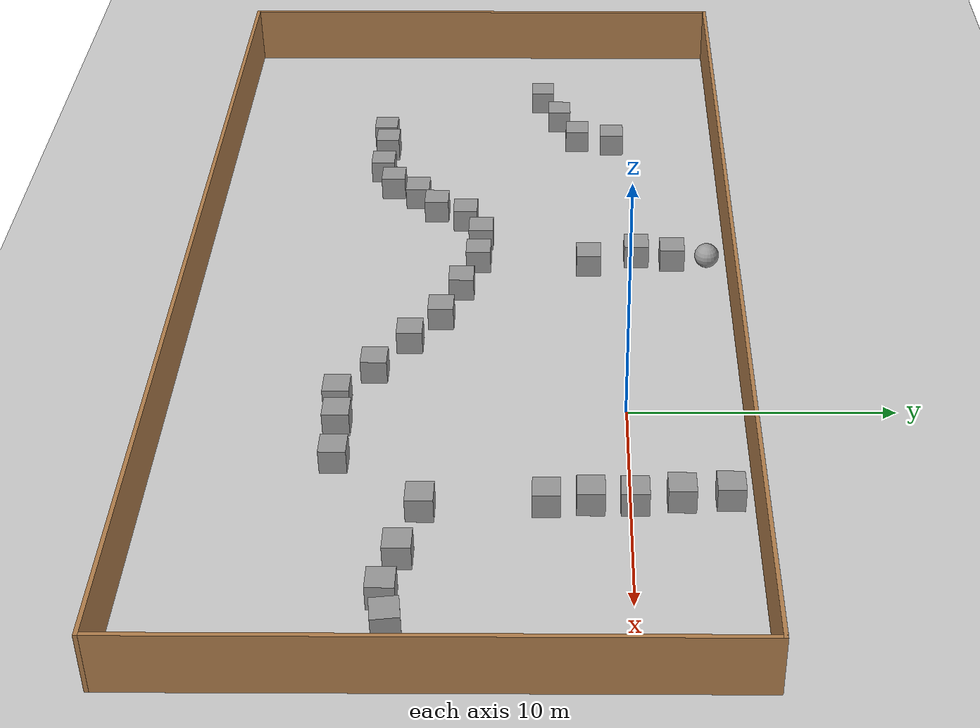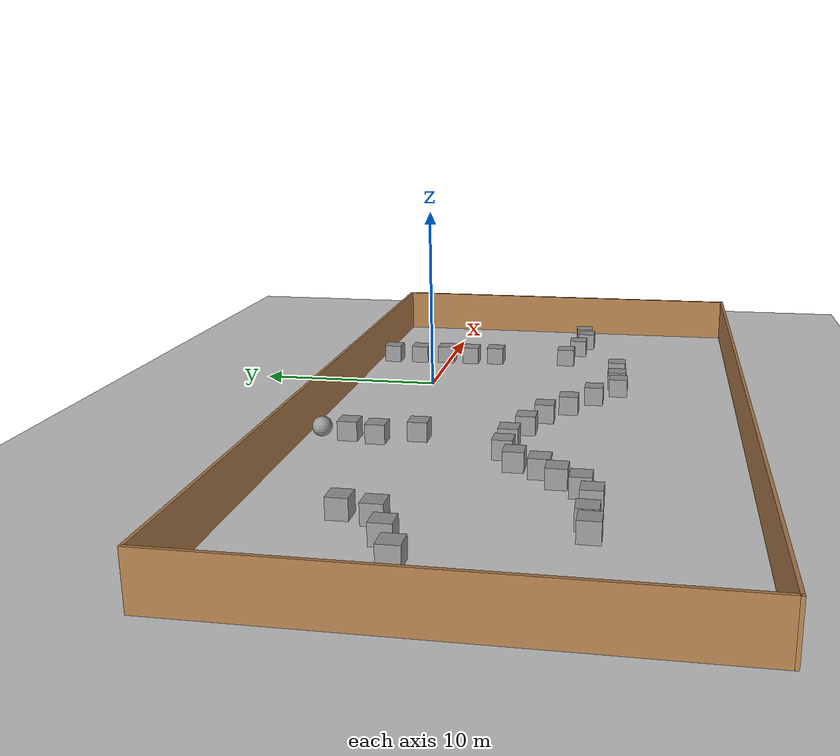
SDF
<sdf version="1.7">
 <world name="default">
  <light name="sun" type="directional">
   <pose>0 0 10 0 -0 0</pose>
   <diffuse>0.8 0.8 0.8 1</diffuse>
   <specular>0.2 0.2 0.2 1</specular>
   <attenuation>
    <range>1000</range>
    <constant>0.9</constant>
    <linear>0.01</linear>
    <quadratic>0.001</quadratic>
   </attenuation>
   <direction>-0.5 0.1 -0.9</direction>
   <spot><inner_angle>0</inner_angle><outer_angle>0</outer_angle><falloff>0</falloff></spot>
  </light>
  <model name="ground_plane">
   <static>1</static>
   <link name="link">
    <collision name="collision">
     <geometry><plane><normal>0 0 1</normal><size>100 100</size></plane></geometry>
     <surface><friction><ode><mu>100</mu><mu2>50</mu2></ode></friction></surface>
    </collision>
    <visual name="visual">
     <cast_shadows>0</cast_shadows>
     <geometry><plane><normal>0 0 1</normal><size>100 100</size></plane></geometry>
     <material>
      <script><uri>file://media/materials/scripts/gazebo.material</uri><name>Gazebo/Grey</name></script>
     </material>
    </visual>
   </link>
  </model>
  <gravity>0 0 -9.8</gravity>
  <magnetic_field>6e-06 2.3e-05 -4.2e-05</magnetic_field>
  <atmosphere type="adiabatic"/>
  <physics type="ode">
   <max_step_size>0.001</max_step_size>
   <real_time_factor>1</real_time_factor>
   <real_time_update_rate>1000</real_time_update_rate>
  </physics>
  <scene><ambient>0.4 0.4 0.4 1</ambient><background>0.7 0.7 0.7 1</background><shadows>1</shadows></scene>
  <spherical_coordinates>
   <surface_model>EARTH_WGS84</surface_model>
   <latitude_deg>0</latitude_deg>
   <longitude_deg>0</longitude_deg>
   <elevation>0</elevation>
   <heading_deg>0</heading_deg>
  </spherical_coordinates>
  <model name="unit_box">
   <pose>-9.3033 -1.32363 0.5 0 -0 0</pose>
   <link name="link">
    <inertial>
     <mass>1</mass>
     <inertia>
      <ixx>0.166667</ixx>
      <ixy>0</ixy>
      <ixz>0</ixz>
      <iyy>0.166667</iyy>
      <iyz>0</iyz>
      <izz>0.166667</izz>
     </inertia>
    </inertial>
    <collision name="collision"><geometry><box><size>1 1 1</size></box></geometry></collision>
    <visual name="visual">
     <geometry><box><size>1 1 1</size></box></geometry>
     <material>
      <script><name>Gazebo/Grey</name><uri>file://media/materials/scripts/gazebo.material</uri></script>
     </material>
    </visual>
   </link>
  </model>
  <model name="Untitled">
   <pose>-6.92798 -6.36915 0 0 -0 0</pose>
   <link name="Wall_0">
    <collision name="Wall_0_Collision">
     <geometry><box><size>41.5 0.15 2.5</size></box></geometry>
     <pose>0 0 1.25 0 -0 0</pose>
    </collision>
    <visual name="Wall_0_Visual">
     <pose>0 0 1.25 0 -0 0</pose>
     <geometry><box><size>41.5 0.15 2.5</size></box></geometry>
     <material>
      <script><uri>file://media/materials/scripts/gazebo.material</uri><name>Gazebo/Wood</name></script>
      <ambient>1 1 1 1</ambient>
     </material>
     <meta><layer>0</layer></meta>
    </visual>
    <pose>-1e-06 10.8 0 0 -0 0</pose>
   </link>
   <link name="Wall_1">
    <collision name="Wall_1_Collision">
     <geometry><box><size>21.75 0.15 2.5</size></box></geometry>
     <pose>0 0 1.25 0 -0 0</pose>
    </collision>
    <visual name="Wall_1_Visual">
     <pose>0 0 1.25 0 -0 0</pose>
     <geometry><box><size>21.75 0.15 2.5</size></box></geometry>
     <material>
      <script><uri>file://media/materials/scripts/gazebo.material</uri><name>Gazebo/Wood</name></script>
      <ambient>1 1 1 1</ambient>
     </material>
     <meta><layer>0</layer></meta>
    </visual>
    <pose>20.675 0 0 0 -0 -1.5708</pose>
   </link>
   <link name="Wall_2">
    <collision name="Wall_2_Collision">
     <geometry><box><size>41.5 0.15 2.5</size></box></geometry>
     <pose>0 0 1.25 0 -0 0</pose>
    </collision>
    <visual name="Wall_2_Visual">
     <pose>0 0 1.25 0 -0 0</pose>
     <geometry><box><size>41.5 0.15 2.5</size></box></geometry>
     <material>
      <script><uri>file://media/materials/scripts/gazebo.material</uri><name>Gazebo/Wood</name></script>
      <ambient>1 1 1 1</ambient>
     </material>
     <meta><layer>0</layer></meta>
    </visual>
    <pose>-1e-06 -10.8 0 0 -0 3.14159</pose>
   </link>
   <link name="Wall_3">
    <collision name="Wall_3_Collision">
     <geometry><box><size>21.75 0.15 2.5</size></box></geometry>
     <pose>0 0 1.25 0 -0 0</pose>
    </collision>
    <visual name="Wall_3_Visual">
     <pose>0 0 1.25 0 -0 0</pose>
     <geometry><box><size>21.75 0.15 2.5</size></box></geometry>
     <material>
      <script><uri>file://media/materials/scripts/gazebo.material</uri><name>Gazebo/Wood</name></script>
      <ambient>1 1 1 1</ambient>
     </material>
     <meta><layer>0</layer></meta>
    </visual>
    <pose>-20.675 0 0 0 -0 1.5708</pose>
   </link>
   <static>1</static>
  </model>
  <model name="unit_box_0">
   <pose>-19.5425 -10.3907 0.5 0 -0 0</pose>
   <link name="link">
    <inertial>
     <mass>1</mass>
     <inertia>
      <ixx>0.166667</ixx>
      <ixy>0</ixy>
      <ixz>0</ixz>
      <iyy>0.166667</iyy>
      <iyz>0</iyz>
      <izz>0.166667</izz>
     </inertia>
    </inertial>
    <collision name="collision"><geometry><box><size>1 1 1</size></box></geometry></collision>
    <visual name="visual">
     <geometry><box><size>1 1 1</size></box></geometry>
     <material>
      <script><name>Gazebo/Grey</name><uri>file://media/materials/scripts/gazebo.material</uri></script>
     </material>
    </visual>
   </link>
  </model>
  <model name="unit_box_1">
   <pose>-18.4284 -10.2386 0.5 0 -0 0</pose>
   <link name="link">
    <inertial>
     <mass>1</mass>
     <inertia>
      <ixx>0.166667</ixx>
      <ixy>0</ixy>
      <ixz>0</ixz>
      <iyy>0.166667</iyy>
      <iyz>0</iyz>
      <izz>0.166667</izz>
     </inertia>
    </inertial>
    <collision name="collision"><geometry><box><size>1 1 1</size></box></geometry></collision>
    <visual name="visual">
     <geometry><box><size>1 1 1</size></box></geometry>
     <material>
      <script><name>Gazebo/Grey</name><uri>file://media/materials/scripts/gazebo.material</uri></script>
     </material>
    </visual>
   </link>
  </model>
  <model name="unit_box_2">
   <pose>-16.5389 -10.2963 0.5 0 -0 0</pose>
   <link name="link">
    <inertial>
     <mass>1</mass>
     <inertia>
      <ixx>0.166667</ixx>
      <ixy>0</ixy>
      <ixz>0</ixz>
      <iyy>0.166667</iyy>
      <iyz>0</iyz>
      <izz>0.166667</izz>
     </inertia>
    </inertial>
    <collision name="collision"><geometry><box><size>1 1 1</size></box></geometry></collision>
    <visual name="visual">
     <geometry><box><size>1 1 1</size></box></geometry>
     <material>
      <script><name>Gazebo/Grey</name><uri>file://media/materials/scripts/gazebo.material</uri></script>
     </material>
    </visual>
   </link>
  </model>
  <model name="unit_box_3">
   <pose>-15.1911 -9.74259 0.5 0 -0 0</pose>
   <link name="link">
    <inertial>
     <mass>1</mass>
     <inertia>
      <ixx>0.166667</ixx>
      <ixy>0</ixy>
      <ixz>0</ixz>
      <iyy>0.166667</iyy>
      <iyz>0</iyz>
      <izz>0.166667</izz>
     </inertia>
    </inertial>
    <collision name="collision"><geometry><box><size>1 1 1</size></box></geometry></collision>
    <visual name="visual">
     <geometry><box><size>1 1 1</size></box></geometry>
     <material>
      <script><name>Gazebo/Grey</name><uri>file://media/materials/scripts/gazebo.material</uri></script>
     </material>
    </visual>
   </link>
  </model>
  <model name="unit_box_4">
   <pose>-14.3607 -8.63382 0.5 0 -0 0</pose>
   <link name="link">
    <inertial>
     <mass>1</mass>
     <inertia>
      <ixx>0.166667</ixx>
      <ixy>0</ixy>
      <ixz>0</ixz>
      <iyy>0.166667</iyy>
      <iyz>0</iyz>
      <izz>0.166667</izz>
     </inertia>
    </inertial>
    <collision name="collision"><geometry><box><size>1 1 1</size></box></geometry></collision>
    <visual name="visual">
     <geometry><box><size>1 1 1</size></box></geometry>
     <material>
      <script><name>Gazebo/Grey</name><uri>file://media/materials/scripts/gazebo.material</uri></script>
     </material>
    </visual>
   </link>
  </model>
  <model name="unit_box_5">
   <pose>-13.3185 -7.76495 0.5 0 -0 0</pose>
   <link name="link">
    <inertial>
     <mass>1</mass>
     <inertia>
      <ixx>0.166667</ixx>
      <ixy>0</ixy>
      <ixz>0</ixz>
      <iyy>0.166667</iyy>
      <iyz>0</iyz>
      <izz>0.166667</izz>
     </inertia>
    </inertial>
    <collision name="collision"><geometry><box><size>1 1 1</size></box></geometry></collision>
    <visual name="visual">
     <geometry><box><size>1 1 1</size></box></geometry>
     <material>
      <script><name>Gazebo/Grey</name><uri>file://media/materials/scripts/gazebo.material</uri></script>
     </material>
    </visual>
   </link>
  </model>
  <model name="unit_box_6">
   <pose>-12.6415 -6.51157 0.5 0 -0 0</pose>
   <link name="link">
    <inertial>
     <mass>1</mass>
     <inertia>
      <ixx>0.166667</ixx>
      <ixy>0</ixy>
      <ixz>0</ixz>
      <iyy>0.166667</iyy>
      <iyz>0</iyz>
      <izz>0.166667</izz>
     </inertia>
    </inertial>
    <collision name="collision"><geometry><box><size>1 1 1</size></box></geometry></collision>
    <visual name="visual">
     <geometry><box><size>1 1 1</size></box></geometry>
     <material>
      <script><name>Gazebo/Grey</name><uri>file://media/materials/scripts/gazebo.material</uri></script>
     </material>
    </visual>
   </link>
  </model>
  <model name="unit_box_7">
   <pose>-11.2001 -5.80117 0.5 0 -0 0</pose>
   <link name="link">
    <inertial>
     <mass>1</mass>
     <inertia>
      <ixx>0.166667</ixx>
      <ixy>0</ixy>
      <ixz>0</ixz>
      <iyy>0.166667</iyy>
      <iyz>0</iyz>
      <izz>0.166667</izz>
     </inertia>
    </inertial>
    <collision name="collision"><geometry><box><size>1 1 1</size></box></geometry></collision>
    <visual name="visual">
     <geometry><box><size>1 1 1</size></box></geometry>
     <material>
      <script><name>Gazebo/Grey</name><uri>file://media/materials/scripts/gazebo.material</uri></script>
     </material>
    </visual>
   </link>
  </model>
  <model name="unit_box_8">
   <pose>-9.57626 -5.84636 0.5 0 -0 0</pose>
   <link name="link">
    <inertial>
     <mass>1</mass>
     <inertia>
      <ixx>0.166667</ixx>
      <ixy>0</ixy>
      <ixz>0</ixz>
      <iyy>0.166667</iyy>
      <iyz>0</iyz>
      <izz>0.166667</izz>
     </inertia>
    </inertial>
    <collision name="collision"><geometry><box><size>1 1 1</size></box></geometry></collision>
    <visual name="visual">
     <geometry><box><size>1 1 1</size></box></geometry>
     <material>
      <script><name>Gazebo/Grey</name><uri>file://media/materials/scripts/gazebo.material</uri></script>
     </material>
    </visual>
   </link>
  </model>
  <model name="unit_box_9">
   <pose>-7.59962 -6.45669 0.5 0 -0 0</pose>
   <link name="link">
    <inertial>
     <mass>1</mass>
     <inertia>
      <ixx>0.166667</ixx>
      <ixy>0</ixy>
      <ixz>0</ixz>
      <iyy>0.166667</iyy>
      <iyz>0</iyz>
      <izz>0.166667</izz>
     </inertia>
    </inertial>
    <collision name="collision"><geometry><box><size>1 1 1</size></box></geometry></collision>
    <visual name="visual">
     <geometry><box><size>1 1 1</size></box></geometry>
     <material>
      <script><name>Gazebo/Grey</name><uri>file://media/materials/scripts/gazebo.material</uri></script>
     </material>
    </visual>
   </link>
  </model>
  <model name="unit_box_10">
   <pose>-5.60485 -7.17064 0.5 0 -0 0</pose>
   <link name="link">
    <inertial>
     <mass>1</mass>
     <inertia>
      <ixx>0.166667</ixx>
      <ixy>0</ixy>
      <ixz>0</ixz>
      <iyy>0.166667</iyy>
      <iyz>0</iyz>
      <izz>0.166667</izz>
     </inertia>
    </inertial>
    <collision name="collision"><geometry><box><size>1 1 1</size></box></geometry></collision>
    <visual name="visual">
     <geometry><box><size>1 1 1</size></box></geometry>
     <material>
      <script><name>Gazebo/Grey</name><uri>file://media/materials/scripts/gazebo.material</uri></script>
     </material>
    </visual>
   </link>
  </model>
  <model name="unit_box_11">
   <pose>-4.05323 -8.2958 0.5 0 -0 0</pose>
   <link name="link">
    <inertial>
     <mass>1</mass>
     <inertia>
      <ixx>0.166667</ixx>
      <ixy>0</ixy>
      <ixz>0</ixz>
      <iyy>0.166667</iyy>
      <iyz>0</iyz>
      <izz>0.166667</izz>
     </inertia>
    </inertial>
    <collision name="collision"><geometry><box><size>1 1 1</size></box></geometry></collision>
    <visual name="visual">
     <geometry><box><size>1 1 1</size></box></geometry>
     <material>
      <script><name>Gazebo/Grey</name><uri>file://media/materials/scripts/gazebo.material</uri></script>
     </material>
    </visual>
   </link>
  </model>
  <model name="unit_box_12">
   <pose>-2.19855 -9.51331 0.5 0 -0 0</pose>
   <link name="link">
    <inertial>
     <mass>1</mass>
     <inertia>
      <ixx>0.166667</ixx>
      <ixy>0</ixy>
      <ixz>0</ixz>
      <iyy>0.166667</iyy>
      <iyz>0</iyz>
      <izz>0.166667</izz>
     </inertia>
    </inertial>
    <collision name="collision"><geometry><box><size>1 1 1</size></box></geometry></collision>
    <visual name="visual">
     <geometry><box><size>1 1 1</size></box></geometry>
     <material>
      <script><name>Gazebo/Grey</name><uri>file://media/materials/scripts/gazebo.material</uri></script>
     </material>
    </visual>
   </link>
  </model>
  <model name="unit_box_13">
   <pose>-0.467773 -10.7703 0.5 0 -0 0</pose>
   <link name="link">
    <inertial>
     <mass>1</mass>
     <inertia>
      <ixx>0.166667</ixx>
      <ixy>0</ixy>
      <ixz>0</ixz>
      <iyy>0.166667</iyy>
      <iyz>0</iyz>
      <izz>0.166667</izz>
     </inertia>
    </inertial>
    <collision name="collision"><geometry><box><size>1 1 1</size></box></geometry></collision>
    <visual name="visual">
     <geometry><box><size>1 1 1</size></box></geometry>
     <material>
      <script><name>Gazebo/Grey</name><uri>file://media/materials/scripts/gazebo.material</uri></script>
     </material>
    </visual>
   </link>
  </model>
  <model name="unit_box_14">
   <pose>0.900071 -10.6445 0.5 0 -0 0</pose>
   <link name="link">
    <inertial>
     <mass>1</mass>
     <inertia>
      <ixx>0.166667</ixx>
      <ixy>0</ixy>
      <ixz>0</ixz>
      <iyy>0.166667</iyy>
      <iyz>0</iyz>
      <izz>0.166667</izz>
     </inertia>
    </inertial>
    <collision name="collision"><geometry><box><size>1 1 1</size></box></geometry></collision>
    <visual name="visual">
     <geometry><box><size>1 1 1</size></box></geometry>
     <material>
      <script><name>Gazebo/Grey</name><uri>file://media/materials/scripts/gazebo.material</uri></script>
     </material>
    </visual>
   </link>
  </model>
  <model name="unit_box_15">
   <pose>2.97417 -10.5514 0.5 0 -0 0</pose>
   <link name="link">
    <inertial>
     <mass>1</mass>
     <inertia>
      <ixx>0.166667</ixx>
      <ixy>0</ixy>
      <ixz>0</ixz>
      <iyy>0.166667</iyy>
      <iyz>0</iyz>
      <izz>0.166667</izz>
     </inertia>
    </inertial>
    <collision name="collision"><geometry><box><size>1 1 1</size></box></geometry></collision>
    <visual name="visual">
     <geometry><box><size>1 1 1</size></box></geometry>
     <material>
      <script><name>Gazebo/Grey</name><uri>file://media/materials/scripts/gazebo.material</uri></script>
     </material>
    </visual>
   </link>
  </model>
  <model name="unit_box_16">
   <pose>-22.6991 -3.33314 0.5 0 -0 0</pose>
   <link name="link">
    <inertial>
     <mass>1</mass>
     <inertia>
      <ixx>0.166667</ixx>
      <ixy>0</ixy>
      <ixz>0</ixz>
      <iyy>0.166667</iyy>
      <iyz>0</iyz>
      <izz>0.166667</izz>
     </inertia>
    </inertial>
    <collision name="collision"><geometry><box><size>1 1 1</size></box></geometry></collision>
    <visual name="visual">
     <geometry><box><size>1 1 1</size></box></geometry>
     <material>
      <script><name>Gazebo/Grey</name><uri>file://media/materials/scripts/gazebo.material</uri></script>
     </material>
    </visual>
   </link>
  </model>
  <model name="unit_box_17">
   <pose>-20.9516 -2.56604 0.5 0 -0 0</pose>
   <link name="link">
    <inertial>
     <mass>1</mass>
     <inertia>
      <ixx>0.166667</ixx>
      <ixy>0</ixy>
      <ixz>0</ixz>
      <iyy>0.166667</iyy>
      <iyz>0</iyz>
      <izz>0.166667</izz>
     </inertia>
    </inertial>
    <collision name="collision"><geometry><box><size>1 1 1</size></box></geometry></collision>
    <visual name="visual">
     <geometry><box><size>1 1 1</size></box></geometry>
     <material>
      <script><name>Gazebo/Grey</name><uri>file://media/materials/scripts/gazebo.material</uri></script>
     </material>
    </visual>
   </link>
  </model>
  <model name="unit_box_18">
   <pose>-19.2038 -1.75827 0.5 0 -0 0</pose>
   <link name="link">
    <inertial>
     <mass>1</mass>
     <inertia>
      <ixx>0.166667</ixx>
      <ixy>0</ixy>
      <ixz>0</ixz>
      <iyy>0.166667</iyy>
      <iyz>0</iyz>
      <izz>0.166667</izz>
     </inertia>
    </inertial>
    <collision name="collision"><geometry><box><size>1 1 1</size></box></geometry></collision>
    <visual name="visual">
     <geometry><box><size>1 1 1</size></box></geometry>
     <material>
      <script><name>Gazebo/Grey</name><uri>file://media/materials/scripts/gazebo.material</uri></script>
     </material>
    </visual>
   </link>
  </model>
  <model name="unit_box_19">
   <pose>-18.8636 -0.208949 0.5 0 -0 0</pose>
   <link name="link">
    <inertial>
     <mass>1</mass>
     <inertia>
      <ixx>0.166667</ixx>
      <ixy>0</ixy>
      <ixz>0</ixz>
      <iyy>0.166667</iyy>
      <iyz>0</iyz>
      <izz>0.166667</izz>
     </inertia>
    </inertial>
    <collision name="collision"><geometry><box><size>1 1 1</size></box></geometry></collision>
    <visual name="visual">
     <geometry><box><size>1 1 1</size></box></geometry>
     <material>
      <script><name>Gazebo/Grey</name><uri>file://media/materials/scripts/gazebo.material</uri></script>
     </material>
    </visual>
   </link>
  </model>
  <model name="unit_box_20">
   <pose>-9.71111 2.1033 0.5 0 -0 0</pose>
   <link name="link">
    <inertial>
     <mass>1</mass>
     <inertia>
      <ixx>0.166667</ixx>
      <ixy>0</ixy>
      <ixz>0</ixz>
      <iyy>0.166667</iyy>
      <iyz>0</iyz>
      <izz>0.166667</izz>
     </inertia>
    </inertial>
    <collision name="collision"><geometry><box><size>1 1 1</size></box></geometry></collision>
    <visual name="visual">
     <geometry><box><size>1 1 1</size></box></geometry>
     <material>
      <script><name>Gazebo/Grey</name><uri>file://media/materials/scripts/gazebo.material</uri></script>
     </material>
    </visual>
   </link>
  </model>
  <model name="unit_sphere">
   <pose>-9.62936 3.54238 0.5 0 -0 0</pose>
   <link name="link">
    <inertial>
     <mass>1</mass>
     <inertia><ixx>0.1</ixx><ixy>0</ixy><ixz>0</ixz><iyy>0.1</iyy><iyz>0</iyz><izz>0.1</izz></inertia>
    </inertial>
    <collision name="collision"><geometry><sphere><radius>0.5</radius></sphere></geometry></collision>
    <visual name="visual">
     <geometry><sphere><radius>0.5</radius></sphere></geometry>
     <material>
      <script><name>Gazebo/Grey</name><uri>file://media/materials/scripts/gazebo.material</uri></script>
     </material>
    </visual>
   </link>
  </model>
  <model name="unit_box_21">
   <pose>-9.94989 0.642682 0.5 0 -0 0</pose>
   <link name="link">
    <inertial>
     <mass>1</mass>
     <inertia>
      <ixx>0.166667</ixx>
      <ixy>0</ixy>
      <ixz>0</ixz>
      <iyy>0.166667</iyy>
      <iyz>0</iyz>
      <izz>0.166667</izz>
     </inertia>
    </inertial>
    <collision name="collision"><geometry><box><size>1 1 1</size></box></geometry></collision>
    <visual name="visual">
     <geometry><box><size>1 1 1</size></box></geometry>
     <material>
      <script><name>Gazebo/Grey</name><uri>file://media/materials/scripts/gazebo.material</uri></script>
     </material>
    </visual>
   </link>
  </model>
  <model name="unit_box_22">
   <pose>4.91866 3.50429 0.5 0 -0 0</pose>
   <link name="link">
    <inertial>
     <mass>1</mass>
     <inertia>
      <ixx>0.166667</ixx>
      <ixy>0</ixy>
      <ixz>0</ixz>
      <iyy>0.166667</iyy>
      <iyz>0</iyz>
      <izz>0.166667</izz>
     </inertia>
    </inertial>
    <collision name="collision"><geometry><box><size>1 1 1</size></box></geometry></collision>
    <visual name="visual">
     <geometry><box><size>1 1 1</size></box></geometry>
     <material>
      <script><name>Gazebo/Grey</name><uri>file://media/materials/scripts/gazebo.material</uri></script>
     </material>
    </visual>
   </link>
  </model>
  <model name="unit_box_23">
   <pose>5.00152 1.7936 0.5 0 -0 0</pose>
   <link name="link">
    <inertial>
     <mass>1</mass>
     <inertia>
      <ixx>0.166667</ixx>
      <ixy>0</ixy>
      <ixz>0</ixz>
      <iyy>0.166667</iyy>
      <iyz>0</iyz>
      <izz>0.166667</izz>
     </inertia>
    </inertial>
    <collision name="collision"><geometry><box><size>1 1 1</size></box></geometry></collision>
    <visual name="visual">
     <geometry><box><size>1 1 1</size></box></geometry>
     <material>
      <script><name>Gazebo/Grey</name><uri>file://media/materials/scripts/gazebo.material</uri></script>
     </material>
    </visual>
   </link>
  </model>
  <model name="unit_box_24">
   <pose>5.16385 0.157237 0.5 0 -0 0</pose>
   <link name="link">
    <inertial>
     <mass>1</mass>
     <inertia>
      <ixx>0.166667</ixx>
      <ixy>0</ixy>
      <ixz>0</ixz>
      <iyy>0.166667</iyy>
      <iyz>0</iyz>
      <izz>0.166667</izz>
     </inertia>
    </inertial>
    <collision name="collision"><geometry><box><size>1 1 1</size></box></geometry></collision>
    <visual name="visual">
     <geometry><box><size>1 1 1</size></box></geometry>
     <material>
      <script><name>Gazebo/Grey</name><uri>file://media/materials/scripts/gazebo.material</uri></script>
     </material>
    </visual>
   </link>
  </model>
  <model name="unit_box_25">
   <pose>5.1622 -1.38529 0.5 0 -0 0</pose>
   <link name="link">
    <inertial>
     <mass>1</mass>
     <inertia>
      <ixx>0.166667</ixx>
      <ixy>0</ixy>
      <ixz>0</ixz>
      <iyy>0.166667</iyy>
      <iyz>0</iyz>
      <izz>0.166667</izz>
     </inertia>
    </inertial>
    <collision name="collision"><geometry><box><size>1 1 1</size></box></geometry></collision>
    <visual name="visual">
     <geometry><box><size>1 1 1</size></box></geometry>
     <material>
      <script><name>Gazebo/Grey</name><uri>file://media/materials/scripts/gazebo.material</uri></script>
     </material>
    </visual>
   </link>
  </model>
  <model name="unit_box_26">
   <pose>5.26684 -2.925 0.5 0 -0 0</pose>
   <link name="link">
    <inertial>
     <mass>1</mass>
     <inertia>
      <ixx>0.166667</ixx>
      <ixy>0</ixy>
      <ixz>0</ixz>
      <iyy>0.166667</iyy>
      <iyz>0</iyz>
      <izz>0.166667</izz>
     </inertia>
    </inertial>
    <collision name="collision"><geometry><box><size>1 1 1</size></box></geometry></collision>
    <visual name="visual">
     <geometry><box><size>1 1 1</size></box></geometry>
     <material>
      <script><name>Gazebo/Grey</name><uri>file://media/materials/scripts/gazebo.material</uri></script>
     </material>
    </visual>
   </link>
  </model>
  <model name="unit_box_27">
   <pose>11.0997 -8.07291 0.5 0 -0 0.118378</pose>
   <link name="link">
    <inertial>
     <mass>1</mass>
     <inertia>
      <ixx>0.166667</ixx>
      <ixy>0</ixy>
      <ixz>0</ixz>
      <iyy>0.166667</iyy>
      <iyz>0</iyz>
      <izz>0.166667</izz>
     </inertia>
    </inertial>
    <collision name="collision"><geometry><box><size>1 1 1</size></box></geometry></collision>
    <visual name="visual">
     <geometry><box><size>1 1 1</size></box></geometry>
     <material>
      <script><name>Gazebo/Grey</name><uri>file://media/materials/scripts/gazebo.material</uri></script>
     </material>
    </visual>
   </link>
  </model>
  <model name="unit_box_28">
   <pose>9.7156 -8.31309 0.5 0 -0 0</pose>
   <link name="link">
    <inertial>
     <mass>1</mass>
     <inertia>
      <ixx>0.166667</ixx>
      <ixy>0</ixy>
      <ixz>0</ixz>
      <iyy>0.166667</iyy>
      <iyz>0</iyz>
      <izz>0.166667</izz>
     </inertia>
    </inertial>
    <collision name="collision"><geometry><box><size>1 1 1</size></box></geometry></collision>
    <visual name="visual">
     <geometry><box><size>1 1 1</size></box></geometry>
     <material>
      <script><name>Gazebo/Grey</name><uri>file://media/materials/scripts/gazebo.material</uri></script>
     </material>
    </visual>
   </link>
  </model>
  <model name="unit_box_29">
   <pose>7.85622 -7.90487 0.5 0 -0 0</pose>
   <link name="link">
    <inertial>
     <mass>1</mass>
     <inertia>
      <ixx>0.166667</ixx>
      <ixy>0</ixy>
      <ixz>0</ixz>
      <iyy>0.166667</iyy>
      <iyz>0</iyz>
      <izz>0.166667</izz>
     </inertia>
    </inertial>
    <collision name="collision"><geometry><box><size>1 1 1</size></box></geometry></collision>
    <visual name="visual">
     <geometry><box><size>1 1 1</size></box></geometry>
     <material>
      <script><name>Gazebo/Grey</name><uri>file://media/materials/scripts/gazebo.material</uri></script>
     </material>
    </visual>
   </link>
  </model>
  <model name="unit_box_30">
   <pose>5.51485 -7.30898 0.5 0 -0 0</pose>
   <link name="link">
    <inertial>
     <mass>1</mass>
     <inertia>
      <ixx>0.166667</ixx>
      <ixy>0</ixy>
      <ixz>0</ixz>
      <iyy>0.166667</iyy>
      <iyz>0</iyz>
      <izz>0.166667</izz>
     </inertia>
    </inertial>
    <collision name="collision"><geometry><box><size>1 1 1</size></box></geometry></collision>
    <visual name="visual">
     <geometry><box><size>1 1 1</size></box></geometry>
     <material>
      <script><name>Gazebo/Grey</name><uri>file://media/materials/scripts/gazebo.material</uri></script>
     </material>
    </visual>
   </link>
  </model>
 </world>
</sdf>
